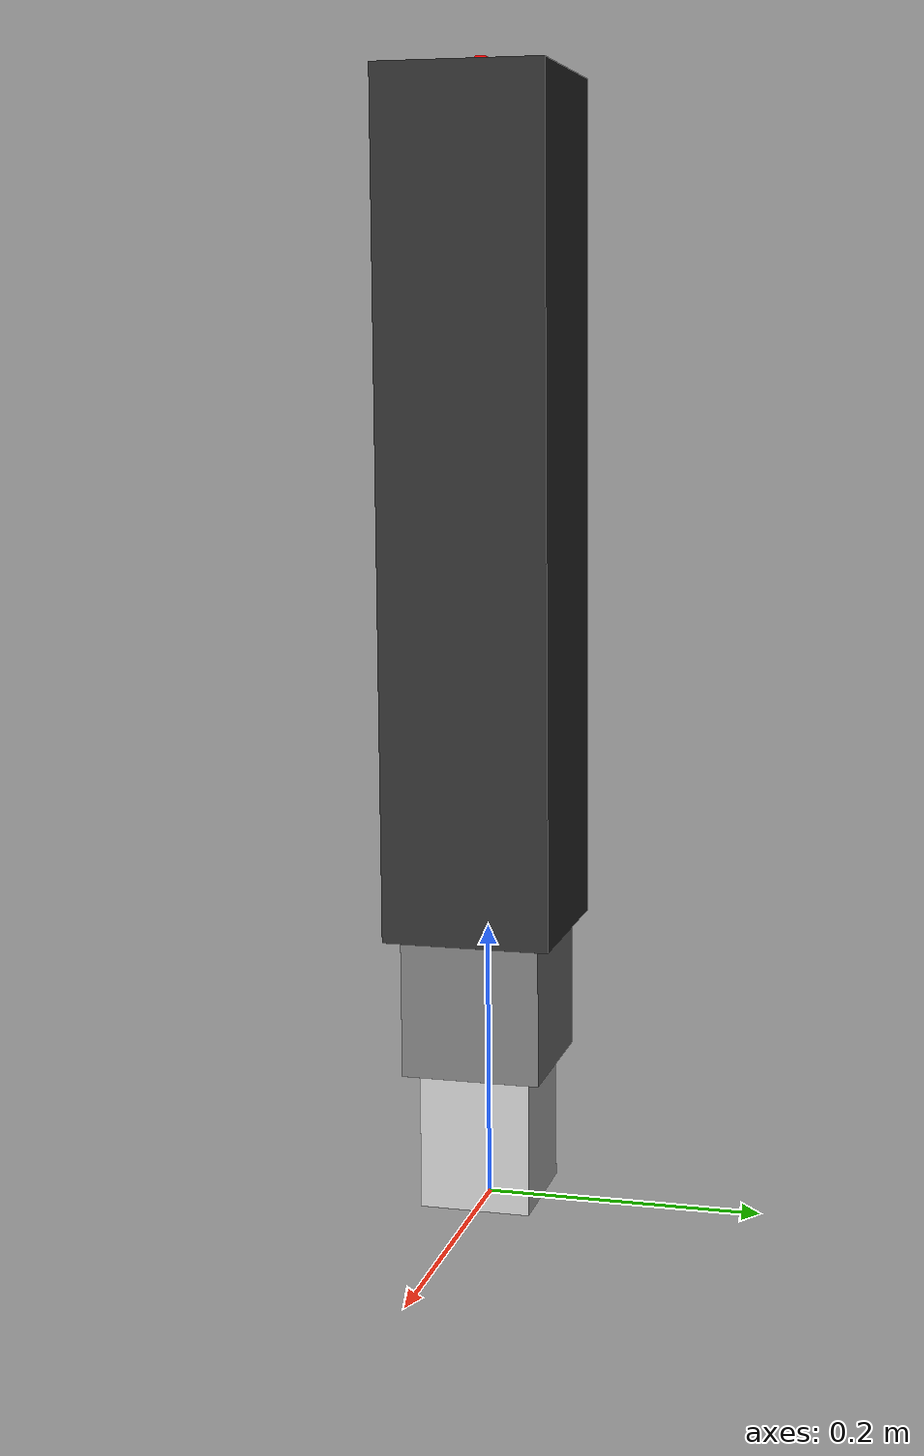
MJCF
<mujoco model="mabel_lift_component">
    <asset>
        <material name="lift_outer_mat" rgba="0.2 0.2 0.2 1"/>
        <material name="lift_middle_mat" rgba="0.5 0.5 0.5 1"/>
        <material name="lift_inner_mat" rgba="0.8 0.8 0.8 1"/>
    </asset>

    <worldbody>
        <body name="lift_base" pos="0 0 0.3">
            <geom type="box" size="0.04 0.04 0.3" material="lift_inner_mat" mass="2" contype="0" conaffinity="0"/>

            <body name="lift_middle" pos="0 0 0.1">
                <joint name="slide_middle" type="slide" axis="0 0 1" range="0 0.4" limited="true"
                       armature="5" frictionloss="10" damping="5"/>
                <geom type="box" size="0.05 0.05 0.3" material="lift_middle_mat" mass="1" contype="0" conaffinity="0"/>

                <body name="lift_top" pos="0 0 0.1">
                    <joint name="slide_top" type="slide" axis="0 0 1" range="0 0.4" limited="true"
                           armature="5" frictionloss="10" damping="5"/>
                    <geom type="box" size="0.06 0.06 0.3" material="lift_outer_mat" mass="1" contype="0" conaffinity="0"/>

                    <site name="torso_mount_point" pos="0 0 0.3" size="0.01" rgba="1 0 0 1"/>
                </body>
            </body>
        </body>
    </worldbody>

    <equality>
        <joint joint1="slide_top" joint2="slide_middle" polycoef="0 1 0 0 0"/>
    </equality>

    <actuator>
        <position name="actuator_lift" joint="slide_middle" kp="5000" kv="150" ctrlrange="0 0.4" ctrllimited="true"/>
    </actuator>
</mujoco>
